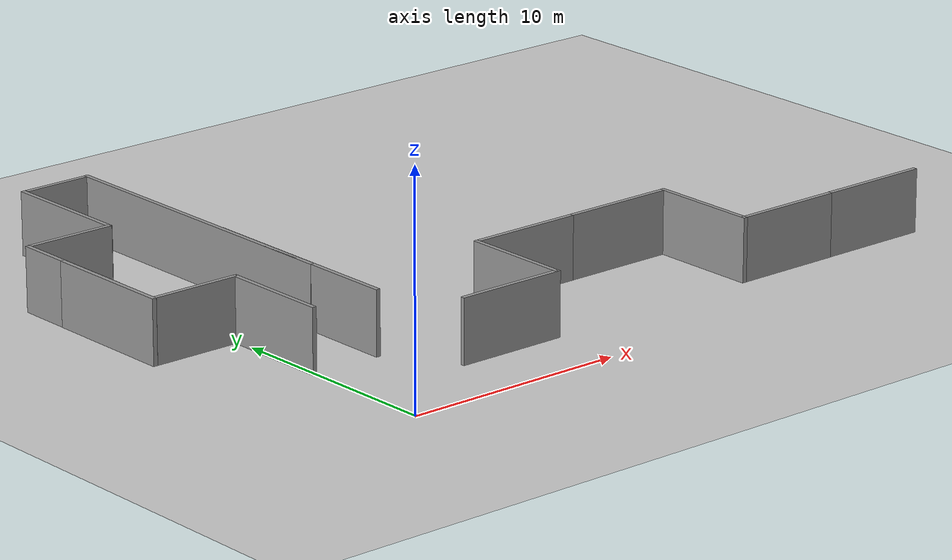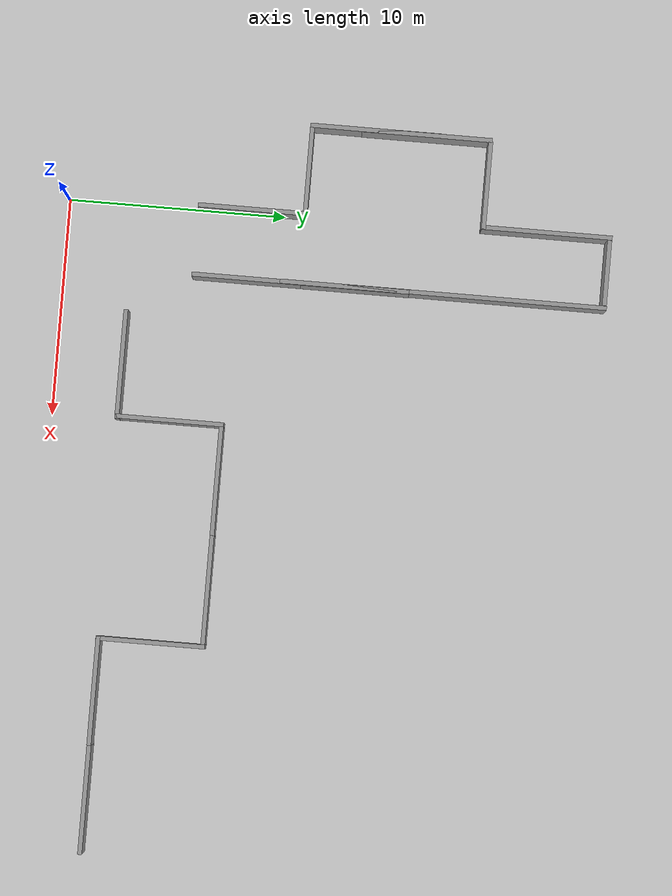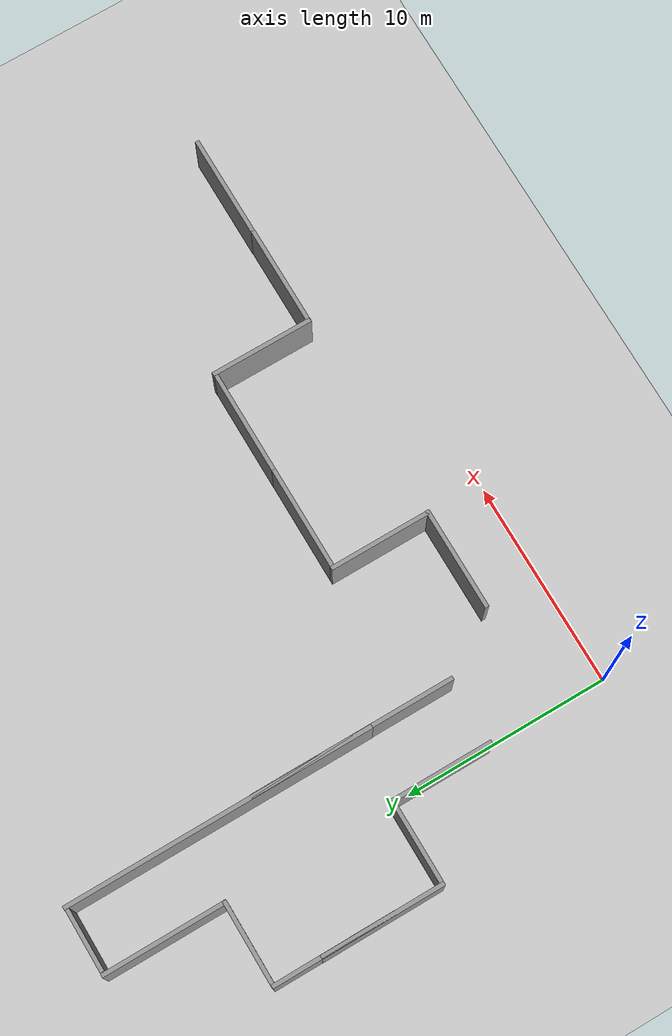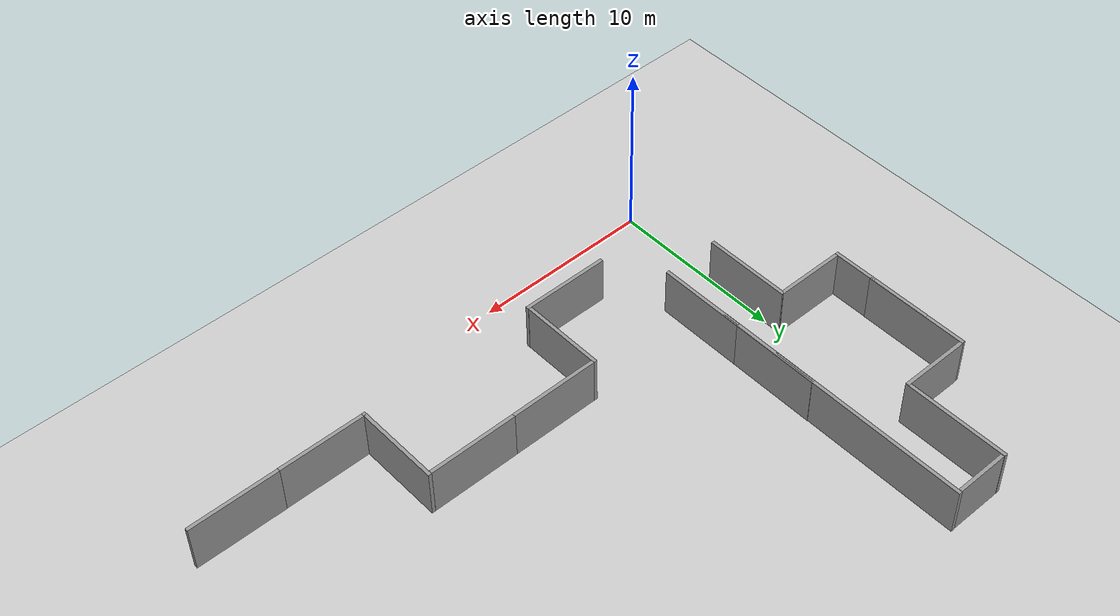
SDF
<sdf version="1.7">
 <world name="default">
  <model name="ground_plane">
   <static>1</static>
   <link name="link">
    <collision name="collision">
     <geometry><plane><normal>0 0 1</normal><size>100 100</size></plane></geometry>
     <surface>
      <contact><collide_bitmask>65535</collide_bitmask></contact>
      <friction><ode><mu>100</mu><mu2>50</mu2></ode></friction>
     </surface>
    </collision>
    <visual name="visual">
     <cast_shadows>0</cast_shadows>
     <geometry><plane><normal>0 0 1</normal><size>100 100</size></plane></geometry>
     <material>
      <script><uri>file://media/materials/scripts/gazebo.material</uri><name>Gazebo/Grey</name></script>
     </material>
    </visual>
   </link>
  </model>
  <model name="grey_wall_5_clone_clone_0_clone_1_clone_0">
   <link name="link">
    <pose>0 0 1.4 0 -0 0</pose>
    <inertial>
     <mass>1</mass>
     <inertia><ixx>1</ixx><ixy>0</ixy><ixz>0</ixz><iyy>1</iyy><iyz>0</iyz><izz>1</izz></inertia>
    </inertial>
    <visual name="visual">
     <cast_shadows>0</cast_shadows>
     <geometry><box><size>5 0.2 2.8</size></box></geometry>
     <material>
      <script>
       <uri>model://grey_wall/materials/scripts</uri>
       <uri>model://grey_wall/materials/textures</uri>
       <name>vrc/grey_wall</name>
      </script>
      <shader type="pixel"><normal_map>__default__</normal_map></shader>
      <ambient>1 1 1 1</ambient>
      <diffuse>1 1 1 1</diffuse>
      <specular>0 0 0 1</specular>
      <emissive>0 0 0 1</emissive>
     </material>
    </visual>
    <collision name="collision">
     <geometry><box><size>5 0.2 2.8</size></box></geometry>
     <surface>
      <friction>
       <ode><mu>1</mu><mu2>1</mu2><fdir1>0 0 0</fdir1><slip1>0</slip1><slip2>0</slip2></ode>
       <torsional>
        <coefficient>1</coefficient>
        <patch_radius>0</patch_radius>
        <surface_radius>0</surface_radius>
        <use_patch_radius>1</use_patch_radius>
        <ode><slip>0</slip></ode>
       </torsional>
      </friction>
      <bounce><restitution_coefficient>0</restitution_coefficient><threshold>1e+06</threshold></bounce>
      <contact>
       <collide_without_contact>0</collide_without_contact>
       <collide_without_contact_bitmask>1</collide_without_contact_bitmask>
       <collide_bitmask>1</collide_bitmask>
       <ode>
        <soft_cfm>0</soft_cfm>
        <soft_erp>0.2</soft_erp>
        <kp>1e+13</kp>
        <kd>1</kd>
        <max_vel>0.01</max_vel>
        <min_depth>0</min_depth>
       </ode>
       <bullet>
        <split_impulse>1</split_impulse>
        <split_impulse_penetration_threshold>-0.01</split_impulse_penetration_threshold>
        <soft_cfm>0</soft_cfm>
        <soft_erp>0.2</soft_erp>
        <kp>1e+13</kp>
        <kd>1</kd>
       </bullet>
      </contact>
     </surface>
    </collision>
   </link>
   <static>1</static>
   <pose>3.12019 8.47031 0 0 -0 1.57141</pose>
  </model>
  <model name="grey_wall_5_clone_clone_0_clone_1_clone_0_clone">
   <link name="link">
    <pose>0 0 1.4 0 -0 0</pose>
    <inertial>
     <mass>1</mass>
     <inertia><ixx>1</ixx><ixy>0</ixy><ixz>0</ixz><iyy>1</iyy><iyz>0</iyz><izz>1</izz></inertia>
    </inertial>
    <visual name="visual">
     <cast_shadows>0</cast_shadows>
     <geometry><box><size>5 0.2 2.8</size></box></geometry>
     <material>
      <script>
       <uri>model://grey_wall/materials/scripts</uri>
       <uri>model://grey_wall/materials/textures</uri>
       <name>vrc/grey_wall</name>
      </script>
      <shader type="pixel"><normal_map>__default__</normal_map></shader>
      <ambient>1 1 1 1</ambient>
      <diffuse>1 1 1 1</diffuse>
      <specular>0 0 0 1</specular>
      <emissive>0 0 0 1</emissive>
     </material>
    </visual>
    <collision name="collision">
     <geometry><box><size>5 0.2 2.8</size></box></geometry>
     <surface>
      <friction>
       <ode><mu>1</mu><mu2>1</mu2><fdir1>0 0 0</fdir1><slip1>0</slip1><slip2>0</slip2></ode>
       <torsional>
        <coefficient>1</coefficient>
        <patch_radius>0</patch_radius>
        <surface_radius>0</surface_radius>
        <use_patch_radius>1</use_patch_radius>
        <ode><slip>0</slip></ode>
       </torsional>
      </friction>
      <bounce><restitution_coefficient>0</restitution_coefficient><threshold>1e+06</threshold></bounce>
      <contact>
       <collide_without_contact>0</collide_without_contact>
       <collide_without_contact_bitmask>1</collide_without_contact_bitmask>
       <collide_bitmask>1</collide_bitmask>
       <ode>
        <soft_cfm>0</soft_cfm>
        <soft_erp>0.2</soft_erp>
        <kp>1e+13</kp>
        <kd>1</kd>
        <max_vel>0.01</max_vel>
        <min_depth>0</min_depth>
       </ode>
       <bullet>
        <split_impulse>1</split_impulse>
        <split_impulse_penetration_threshold>-0.01</split_impulse_penetration_threshold>
        <soft_cfm>0</soft_cfm>
        <soft_erp>0.2</soft_erp>
        <kp>1e+13</kp>
        <kd>1</kd>
       </bullet>
      </contact>
     </surface>
    </collision>
   </link>
   <static>1</static>
   <pose>-0.065222 8.48642 0 0 -0 1.57141</pose>
  </model>
  <model name="grey_wall_4_clone">
   <link name="link">
    <pose>0 0 1.4 0 -0 0</pose>
    <inertial>
     <mass>1</mass>
     <inertia><ixx>1</ixx><ixy>0</ixy><ixz>0</ixz><iyy>1</iyy><iyz>0</iyz><izz>1</izz></inertia>
    </inertial>
    <visual name="visual">
     <cast_shadows>0</cast_shadows>
     <geometry><box><size>4 0.2 2.8</size></box></geometry>
     <material>
      <script>
       <uri>model://grey_wall/materials/scripts</uri>
       <uri>model://grey_wall/materials/textures</uri>
       <name>vrc/grey_wall</name>
      </script>
      <shader type="pixel"><normal_map>__default__</normal_map></shader>
      <ambient>1 1 1 1</ambient>
      <diffuse>1 1 1 1</diffuse>
      <specular>0 0 0 1</specular>
      <emissive>0 0 0 1</emissive>
     </material>
    </visual>
    <collision name="collision">
     <geometry><box><size>4 0.2 2.8</size></box></geometry>
     <surface>
      <friction>
       <ode><mu>1</mu><mu2>1</mu2><fdir1>0 0 0</fdir1><slip1>0</slip1><slip2>0</slip2></ode>
       <torsional>
        <coefficient>1</coefficient>
        <patch_radius>0</patch_radius>
        <surface_radius>0</surface_radius>
        <use_patch_radius>1</use_patch_radius>
        <ode><slip>0</slip></ode>
       </torsional>
      </friction>
      <bounce><restitution_coefficient>0</restitution_coefficient><threshold>1e+06</threshold></bounce>
      <contact>
       <collide_without_contact>0</collide_without_contact>
       <collide_without_contact_bitmask>1</collide_without_contact_bitmask>
       <collide_bitmask>1</collide_bitmask>
       <ode>
        <soft_cfm>0</soft_cfm>
        <soft_erp>0.2</soft_erp>
        <kp>1e+13</kp>
        <kd>1</kd>
        <max_vel>0.01</max_vel>
        <min_depth>0</min_depth>
       </ode>
       <bullet>
        <split_impulse>1</split_impulse>
        <split_impulse_penetration_threshold>-0.01</split_impulse_penetration_threshold>
        <soft_cfm>0</soft_cfm>
        <soft_erp>0.2</soft_erp>
        <kp>1e+13</kp>
        <kd>1</kd>
       </bullet>
      </contact>
     </surface>
    </collision>
   </link>
   <static>1</static>
   <pose>-2.03588 10.9027 0 0 -0 0</pose>
  </model>
  <model name="grey_wall_5_clone_clone_0_clone_1_clone_0_clone_0">
   <link name="link">
    <pose>0 0 1.4 0 -0 0</pose>
    <inertial>
     <mass>1</mass>
     <inertia><ixx>1</ixx><ixy>0</ixy><ixz>0</ixz><iyy>1</iyy><iyz>0</iyz><izz>1</izz></inertia>
    </inertial>
    <visual name="visual">
     <cast_shadows>0</cast_shadows>
     <geometry><box><size>5 0.2 2.8</size></box></geometry>
     <material>
      <script>
       <uri>model://grey_wall/materials/scripts</uri>
       <uri>model://grey_wall/materials/textures</uri>
       <name>vrc/grey_wall</name>
      </script>
      <shader type="pixel"><normal_map>__default__</normal_map></shader>
      <ambient>1 1 1 1</ambient>
      <diffuse>1 1 1 1</diffuse>
      <specular>0 0 0 1</specular>
      <emissive>0 0 0 1</emissive>
     </material>
    </visual>
    <collision name="collision">
     <geometry><box><size>5 0.2 2.8</size></box></geometry>
     <surface>
      <friction>
       <ode><mu>1</mu><mu2>1</mu2><fdir1>0 0 0</fdir1><slip1>0</slip1><slip2>0</slip2></ode>
       <torsional>
        <coefficient>1</coefficient>
        <patch_radius>0</patch_radius>
        <surface_radius>0</surface_radius>
        <use_patch_radius>1</use_patch_radius>
        <ode><slip>0</slip></ode>
       </torsional>
      </friction>
      <bounce><restitution_coefficient>0</restitution_coefficient><threshold>1e+06</threshold></bounce>
      <contact>
       <collide_without_contact>0</collide_without_contact>
       <collide_without_contact_bitmask>1</collide_without_contact_bitmask>
       <collide_bitmask>1</collide_bitmask>
       <ode>
        <soft_cfm>0</soft_cfm>
        <soft_erp>0.2</soft_erp>
        <kp>1e+13</kp>
        <kd>1</kd>
        <max_vel>0.01</max_vel>
        <min_depth>0</min_depth>
       </ode>
       <bullet>
        <split_impulse>1</split_impulse>
        <split_impulse_penetration_threshold>-0.01</split_impulse_penetration_threshold>
        <soft_cfm>0</soft_cfm>
        <soft_erp>0.2</soft_erp>
        <kp>1e+13</kp>
        <kd>1</kd>
       </bullet>
      </contact>
     </surface>
    </collision>
   </link>
   <static>1</static>
   <pose>3.11862 13.4552 0 0 -0 1.57141</pose>
  </model>
  <model name="grey_wall_6_clone_clone_1">
   <link name="link">
    <pose>0 0 1.4 0 -0 0</pose>
    <inertial>
     <mass>1</mass>
     <inertia><ixx>1</ixx><ixy>0</ixy><ixz>0</ixz><iyy>1</iyy><iyz>0</iyz><izz>1</izz></inertia>
    </inertial>
    <visual name="visual">
     <cast_shadows>0</cast_shadows>
     <geometry><box><size>6 0.2 2.8</size></box></geometry>
     <material>
      <script>
       <uri>model://grey_wall/materials/scripts</uri>
       <uri>model://grey_wall/materials/textures</uri>
       <name>vrc/grey_wall</name>
      </script>
      <shader type="pixel"><normal_map>__default__</normal_map></shader>
      <ambient>1 1 1 1</ambient>
      <diffuse>1 1 1 1</diffuse>
      <specular>0 0 0 1</specular>
      <emissive>0 0 0 1</emissive>
     </material>
    </visual>
    <collision name="collision">
     <geometry><box><size>6 0.2 2.8</size></box></geometry>
     <surface>
      <friction>
       <ode><mu>1</mu><mu2>1</mu2><fdir1>0 0 0</fdir1><slip1>0</slip1><slip2>0</slip2></ode>
       <torsional>
        <coefficient>1</coefficient>
        <patch_radius>0</patch_radius>
        <surface_radius>0</surface_radius>
        <use_patch_radius>1</use_patch_radius>
        <ode><slip>0</slip></ode>
       </torsional>
      </friction>
      <bounce><restitution_coefficient>0</restitution_coefficient><threshold>1e+06</threshold></bounce>
      <contact>
       <collide_without_contact>0</collide_without_contact>
       <collide_without_contact_bitmask>1</collide_without_contact_bitmask>
       <collide_bitmask>1</collide_bitmask>
       <ode>
        <soft_cfm>0</soft_cfm>
        <soft_erp>0.2</soft_erp>
        <kp>1e+13</kp>
        <kd>1</kd>
        <max_vel>0.01</max_vel>
        <min_depth>0</min_depth>
       </ode>
       <bullet>
        <split_impulse>1</split_impulse>
        <split_impulse_penetration_threshold>-0.01</split_impulse_penetration_threshold>
        <soft_cfm>0</soft_cfm>
        <soft_erp>0.2</soft_erp>
        <kp>1e+13</kp>
        <kd>1</kd>
       </bullet>
      </contact>
     </surface>
    </collision>
   </link>
   <static>1</static>
   <pose>-0.132493 22.0077 0 0 -0 1.57141</pose>
  </model>
  <model name="grey_wall_4_clone_clone">
   <link name="link">
    <pose>0 0 1.4 0 -0 0</pose>
    <inertial>
     <mass>1</mass>
     <inertia><ixx>1</ixx><ixy>0</ixy><ixz>0</ixz><iyy>1</iyy><iyz>0</iyz><izz>1</izz></inertia>
    </inertial>
    <visual name="visual">
     <cast_shadows>0</cast_shadows>
     <geometry><box><size>4 0.2 2.8</size></box></geometry>
     <material>
      <script>
       <uri>model://grey_wall/materials/scripts</uri>
       <uri>model://grey_wall/materials/textures</uri>
       <name>vrc/grey_wall</name>
      </script>
      <shader type="pixel"><normal_map>__default__</normal_map></shader>
      <ambient>1 1 1 1</ambient>
      <diffuse>1 1 1 1</diffuse>
      <specular>0 0 0 1</specular>
      <emissive>0 0 0 1</emissive>
     </material>
    </visual>
    <collision name="collision">
     <geometry><box><size>4 0.2 2.8</size></box></geometry>
     <surface>
      <friction>
       <ode><mu>1</mu><mu2>1</mu2><fdir1>0 0 0</fdir1><slip1>0</slip1><slip2>0</slip2></ode>
       <torsional>
        <coefficient>1</coefficient>
        <patch_radius>0</patch_radius>
        <surface_radius>0</surface_radius>
        <use_patch_radius>1</use_patch_radius>
        <ode><slip>0</slip></ode>
       </torsional>
      </friction>
      <bounce><restitution_coefficient>0</restitution_coefficient><threshold>1e+06</threshold></bounce>
      <contact>
       <collide_without_contact>0</collide_without_contact>
       <collide_without_contact_bitmask>1</collide_without_contact_bitmask>
       <collide_bitmask>1</collide_bitmask>
       <ode>
        <soft_cfm>0</soft_cfm>
        <soft_erp>0.2</soft_erp>
        <kp>1e+13</kp>
        <kd>1</kd>
        <max_vel>0.01</max_vel>
        <min_depth>0</min_depth>
       </ode>
       <bullet>
        <split_impulse>1</split_impulse>
        <split_impulse_penetration_threshold>-0.01</split_impulse_penetration_threshold>
        <soft_cfm>0</soft_cfm>
        <soft_erp>0.2</soft_erp>
        <kp>1e+13</kp>
        <kd>1</kd>
       </bullet>
      </contact>
     </surface>
    </collision>
   </link>
   <static>1</static>
   <pose>-2.0563 19.0963 0 0 -0 0</pose>
  </model>
  <model name="grey_wall_15_clone_0_clone_2">
   <link name="link">
    <pose>0 0 1.4 0 -0 0</pose>
    <inertial>
     <mass>1</mass>
     <inertia><ixx>1</ixx><ixy>0</ixy><ixz>0</ixz><iyy>1</iyy><iyz>0</iyz><izz>1</izz></inertia>
    </inertial>
    <visual name="visual">
     <cast_shadows>0</cast_shadows>
     <geometry><box><size>15 0.2 2.8</size></box></geometry>
     <material>
      <script>
       <uri>model://grey_wall/materials/scripts</uri>
       <uri>model://grey_wall/materials/textures</uri>
       <name>vrc/grey_wall</name>
      </script>
      <shader type="pixel"><normal_map>__default__</normal_map></shader>
      <ambient>1 1 1 1</ambient>
      <diffuse>1 1 1 1</diffuse>
      <specular>0 0 0 1</specular>
      <emissive>0 0 0 1</emissive>
     </material>
    </visual>
    <collision name="collision">
     <geometry><box><size>15 0.2 2.8</size></box></geometry>
     <surface>
      <friction>
       <ode><mu>1</mu><mu2>1</mu2><fdir1>0 0 0</fdir1><slip1>0</slip1><slip2>0</slip2></ode>
       <torsional>
        <coefficient>1</coefficient>
        <patch_radius>0</patch_radius>
        <surface_radius>0</surface_radius>
        <use_patch_radius>1</use_patch_radius>
        <ode><slip>0</slip></ode>
       </torsional>
      </friction>
      <bounce><restitution_coefficient>0</restitution_coefficient><threshold>1e+06</threshold></bounce>
      <contact>
       <collide_without_contact>0</collide_without_contact>
       <collide_without_contact_bitmask>1</collide_without_contact_bitmask>
       <collide_bitmask>1</collide_bitmask>
       <ode>
        <soft_cfm>0</soft_cfm>
        <soft_erp>0.2</soft_erp>
        <kp>1e+13</kp>
        <kd>1</kd>
        <max_vel>0.01</max_vel>
        <min_depth>0</min_depth>
       </ode>
       <bullet>
        <split_impulse>1</split_impulse>
        <split_impulse_penetration_threshold>-0.01</split_impulse_penetration_threshold>
        <soft_cfm>0</soft_cfm>
        <soft_erp>0.2</soft_erp>
        <kp>1e+13</kp>
        <kd>1</kd>
       </bullet>
      </contact>
     </surface>
    </collision>
   </link>
   <static>1</static>
   <pose>3.09804 17.5153 0 0 -0 1.57141</pose>
  </model>
  <model name="grey_wall_6_clone_clone_clone_clone_0">
   <link name="link">
    <pose>0 0 1.4 0 -0 0</pose>
    <inertial>
     <mass>1</mass>
     <inertia><ixx>1</ixx><ixy>0</ixy><ixz>0</ixz><iyy>1</iyy><iyz>0</iyz><izz>1</izz></inertia>
    </inertial>
    <visual name="visual">
     <cast_shadows>0</cast_shadows>
     <geometry><box><size>6 0.2 2.8</size></box></geometry>
     <material>
      <script>
       <uri>model://grey_wall/materials/scripts</uri>
       <uri>model://grey_wall/materials/textures</uri>
       <name>vrc/grey_wall</name>
      </script>
      <shader type="pixel"><normal_map>__default__</normal_map></shader>
      <ambient>1 1 1 1</ambient>
      <diffuse>1 1 1 1</diffuse>
      <specular>0 0 0 1</specular>
      <emissive>0 0 0 1</emissive>
     </material>
    </visual>
    <collision name="collision">
     <geometry><box><size>6 0.2 2.8</size></box></geometry>
     <surface>
      <friction>
       <ode><mu>1</mu><mu2>1</mu2><fdir1>0 0 0</fdir1><slip1>0</slip1><slip2>0</slip2></ode>
       <torsional>
        <coefficient>1</coefficient>
        <patch_radius>0</patch_radius>
        <surface_radius>0</surface_radius>
        <use_patch_radius>1</use_patch_radius>
        <ode><slip>0</slip></ode>
       </torsional>
      </friction>
      <bounce><restitution_coefficient>0</restitution_coefficient><threshold>1e+06</threshold></bounce>
      <contact>
       <collide_without_contact>0</collide_without_contact>
       <collide_without_contact_bitmask>1</collide_without_contact_bitmask>
       <collide_bitmask>1</collide_bitmask>
       <ode>
        <soft_cfm>0</soft_cfm>
        <soft_erp>0.2</soft_erp>
        <kp>1e+13</kp>
        <kd>1</kd>
        <max_vel>0.01</max_vel>
        <min_depth>0</min_depth>
       </ode>
       <bullet>
        <split_impulse>1</split_impulse>
        <split_impulse_penetration_threshold>-0.01</split_impulse_penetration_threshold>
        <soft_cfm>0</soft_cfm>
        <soft_erp>0.2</soft_erp>
        <kp>1e+13</kp>
        <kd>1</kd>
       </bullet>
      </contact>
     </surface>
    </collision>
   </link>
   <static>1</static>
   <pose>-4.12519 16.1712 0 0 -0 1.57141</pose>
  </model>
  <model name="grey_wall_6_clone_clone_clone_clone_1">
   <link name="link">
    <pose>0 0 1.4 0 -0 0</pose>
    <inertial>
     <mass>1</mass>
     <inertia><ixx>1</ixx><ixy>0</ixy><ixz>0</ixz><iyy>1</iyy><iyz>0</iyz><izz>1</izz></inertia>
    </inertial>
    <visual name="visual">
     <cast_shadows>0</cast_shadows>
     <geometry><box><size>6 0.2 2.8</size></box></geometry>
     <material>
      <script>
       <uri>model://grey_wall/materials/scripts</uri>
       <uri>model://grey_wall/materials/textures</uri>
       <name>vrc/grey_wall</name>
      </script>
      <shader type="pixel"><normal_map>__default__</normal_map></shader>
      <ambient>1 1 1 1</ambient>
      <diffuse>1 1 1 1</diffuse>
      <specular>0 0 0 1</specular>
      <emissive>0 0 0 1</emissive>
     </material>
    </visual>
    <collision name="collision">
     <geometry><box><size>6 0.2 2.8</size></box></geometry>
     <surface>
      <friction>
       <ode><mu>1</mu><mu2>1</mu2><fdir1>0 0 0</fdir1><slip1>0</slip1><slip2>0</slip2></ode>
       <torsional>
        <coefficient>1</coefficient>
        <patch_radius>0</patch_radius>
        <surface_radius>0</surface_radius>
        <use_patch_radius>1</use_patch_radius>
        <ode><slip>0</slip></ode>
       </torsional>
      </friction>
      <bounce><restitution_coefficient>0</restitution_coefficient><threshold>1e+06</threshold></bounce>
      <contact>
       <collide_without_contact>0</collide_without_contact>
       <collide_without_contact_bitmask>1</collide_without_contact_bitmask>
       <collide_bitmask>1</collide_bitmask>
       <ode>
        <soft_cfm>0</soft_cfm>
        <soft_erp>0.2</soft_erp>
        <kp>1e+13</kp>
        <kd>1</kd>
        <max_vel>0.01</max_vel>
        <min_depth>0</min_depth>
       </ode>
       <bullet>
        <split_impulse>1</split_impulse>
        <split_impulse_penetration_threshold>-0.01</split_impulse_penetration_threshold>
        <soft_cfm>0</soft_cfm>
        <soft_erp>0.2</soft_erp>
        <kp>1e+13</kp>
        <kd>1</kd>
       </bullet>
      </contact>
     </surface>
    </collision>
   </link>
   <static>1</static>
   <pose>-4.13555 13.8061 0 0 -0 1.57141</pose>
  </model>
  <model name="grey_wall_3_clone_clone">
   <link name="link">
    <pose>0 0 1.4 0 -0 0</pose>
    <inertial>
     <mass>1</mass>
     <inertia><ixx>1</ixx><ixy>0</ixy><ixz>0</ixz><iyy>1</iyy><iyz>0</iyz><izz>1</izz></inertia>
    </inertial>
    <visual name="visual">
     <cast_shadows>0</cast_shadows>
     <geometry><box><size>3 0.2 2.8</size></box></geometry>
     <material>
      <script>
       <uri>model://grey_wall/materials/scripts</uri>
       <uri>model://grey_wall/materials/textures</uri>
       <name>vrc/grey_wall</name>
      </script>
      <shader type="pixel"><normal_map>__default__</normal_map></shader>
      <ambient>1 1 1 1</ambient>
      <diffuse>1 1 1 1</diffuse>
      <specular>0 0 0 1</specular>
      <emissive>0 0 0 1</emissive>
     </material>
    </visual>
    <collision name="collision">
     <geometry><box><size>2.96 0.2 2.8</size></box></geometry>
     <surface>
      <friction>
       <ode><mu>1</mu><mu2>1</mu2><fdir1>0 0 0</fdir1><slip1>0</slip1><slip2>0</slip2></ode>
       <torsional>
        <coefficient>1</coefficient>
        <patch_radius>0</patch_radius>
        <surface_radius>0</surface_radius>
        <use_patch_radius>1</use_patch_radius>
        <ode><slip>0</slip></ode>
       </torsional>
      </friction>
      <bounce><restitution_coefficient>0</restitution_coefficient><threshold>1e+06</threshold></bounce>
      <contact>
       <collide_without_contact>0</collide_without_contact>
       <collide_without_contact_bitmask>1</collide_without_contact_bitmask>
       <collide_bitmask>1</collide_bitmask>
       <ode>
        <soft_cfm>0</soft_cfm>
        <soft_erp>0.2</soft_erp>
        <kp>1e+13</kp>
        <kd>1</kd>
        <max_vel>0.01</max_vel>
        <min_depth>0</min_depth>
       </ode>
       <bullet>
        <split_impulse>1</split_impulse>
        <split_impulse_penetration_threshold>-0.01</split_impulse_penetration_threshold>
        <soft_cfm>0</soft_cfm>
        <soft_erp>0.2</soft_erp>
        <kp>1e+13</kp>
        <kd>1</kd>
       </bullet>
      </contact>
     </surface>
    </collision>
   </link>
   <static>1</static>
   <pose>1.48463 24.8982 0 0 -0 0</pose>
  </model>
  <model name="grey_wall_5_clone_2_clone">
   <link name="link">
    <pose>0 0 1.4 0 -0 0</pose>
    <inertial>
     <mass>1</mass>
     <inertia><ixx>1</ixx><ixy>0</ixy><ixz>0</ixz><iyy>1</iyy><iyz>0</iyz><izz>1</izz></inertia>
    </inertial>
    <visual name="visual">
     <cast_shadows>0</cast_shadows>
     <geometry><box><size>5 0.2 2.8</size></box></geometry>
     <material>
      <script>
       <uri>model://grey_wall/materials/scripts</uri>
       <uri>model://grey_wall/materials/textures</uri>
       <name>vrc/grey_wall</name>
      </script>
      <shader type="pixel"><normal_map>__default__</normal_map></shader>
      <ambient>1 1 1 1</ambient>
      <diffuse>1 1 1 1</diffuse>
      <specular>0 0 0 1</specular>
      <emissive>0 0 0 1</emissive>
     </material>
    </visual>
    <collision name="collision">
     <geometry><box><size>5 0.2 2.8</size></box></geometry>
     <surface>
      <friction>
       <ode><mu>1</mu><mu2>1</mu2><fdir1>0 0 0</fdir1><slip1>0</slip1><slip2>0</slip2></ode>
       <torsional>
        <coefficient>1</coefficient>
        <patch_radius>0</patch_radius>
        <surface_radius>0</surface_radius>
        <use_patch_radius>1</use_patch_radius>
        <ode><slip>0</slip></ode>
       </torsional>
      </friction>
      <bounce><restitution_coefficient>0</restitution_coefficient><threshold>1e+06</threshold></bounce>
      <contact>
       <collide_without_contact>0</collide_without_contact>
       <collide_without_contact_bitmask>1</collide_without_contact_bitmask>
       <collide_bitmask>1</collide_bitmask>
       <ode>
        <soft_cfm>0</soft_cfm>
        <soft_erp>0.2</soft_erp>
        <kp>1e+13</kp>
        <kd>1</kd>
        <max_vel>0.01</max_vel>
        <min_depth>0</min_depth>
       </ode>
       <bullet>
        <split_impulse>1</split_impulse>
        <split_impulse_penetration_threshold>-0.01</split_impulse_penetration_threshold>
        <soft_cfm>0</soft_cfm>
        <soft_erp>0.2</soft_erp>
        <kp>1e+13</kp>
        <kd>1</kd>
       </bullet>
      </contact>
     </surface>
    </collision>
   </link>
   <static>1</static>
   <pose>7.4961 3.10574 0 0 0 -0.000612</pose>
  </model>
  <model name="grey_wall_5_clone_clone">
   <link name="link">
    <pose>0 0 1.4 0 -0 0</pose>
    <inertial>
     <mass>1</mass>
     <inertia><ixx>1</ixx><ixy>0</ixy><ixz>0</ixz><iyy>1</iyy><iyz>0</iyz><izz>1</izz></inertia>
    </inertial>
    <visual name="visual">
     <cast_shadows>0</cast_shadows>
     <geometry><box><size>5 0.2 2.8</size></box></geometry>
     <material>
      <script>
       <uri>model://grey_wall/materials/scripts</uri>
       <uri>model://grey_wall/materials/textures</uri>
       <name>vrc/grey_wall</name>
      </script>
      <shader type="pixel"><normal_map>__default__</normal_map></shader>
      <ambient>1 1 1 1</ambient>
      <diffuse>1 1 1 1</diffuse>
      <specular>0 0 0 1</specular>
      <emissive>0 0 0 1</emissive>
     </material>
    </visual>
    <collision name="collision">
     <geometry><box><size>5 0.2 2.8</size></box></geometry>
     <surface>
      <friction>
       <ode><mu>1</mu><mu2>1</mu2><fdir1>0 0 0</fdir1><slip1>0</slip1><slip2>0</slip2></ode>
       <torsional>
        <coefficient>1</coefficient>
        <patch_radius>0</patch_radius>
        <surface_radius>0</surface_radius>
        <use_patch_radius>1</use_patch_radius>
        <ode><slip>0</slip></ode>
       </torsional>
      </friction>
      <bounce><restitution_coefficient>0</restitution_coefficient><threshold>1e+06</threshold></bounce>
      <contact>
       <collide_without_contact>0</collide_without_contact>
       <collide_without_contact_bitmask>1</collide_without_contact_bitmask>
       <collide_bitmask>1</collide_bitmask>
       <ode>
        <soft_cfm>0</soft_cfm>
        <soft_erp>0.2</soft_erp>
        <kp>1e+13</kp>
        <kd>1</kd>
        <max_vel>0.01</max_vel>
        <min_depth>0</min_depth>
       </ode>
       <bullet>
        <split_impulse>1</split_impulse>
        <split_impulse_penetration_threshold>-0.01</split_impulse_penetration_threshold>
        <soft_cfm>0</soft_cfm>
        <soft_erp>0.2</soft_erp>
        <kp>1e+13</kp>
        <kd>1</kd>
       </bullet>
      </contact>
     </surface>
    </collision>
   </link>
   <static>1</static>
   <pose>9.88537 5.50816 0 0 -0 1.57141</pose>
  </model>
  <model name="grey_wall_5_clone_clone_clone">
   <link name="link">
    <pose>0 0 1.4 0 -0 0</pose>
    <inertial>
     <mass>1</mass>
     <inertia><ixx>1</ixx><ixy>0</ixy><ixz>0</ixz><iyy>1</iyy><iyz>0</iyz><izz>1</izz></inertia>
    </inertial>
    <visual name="visual">
     <cast_shadows>0</cast_shadows>
     <geometry><box><size>5 0.2 2.8</size></box></geometry>
     <material>
      <script>
       <uri>model://grey_wall/materials/scripts</uri>
       <uri>model://grey_wall/materials/textures</uri>
       <name>vrc/grey_wall</name>
      </script>
      <shader type="pixel"><normal_map>__default__</normal_map></shader>
      <ambient>1 1 1 1</ambient>
      <diffuse>1 1 1 1</diffuse>
      <specular>0 0 0 1</specular>
      <emissive>0 0 0 1</emissive>
     </material>
    </visual>
    <collision name="collision">
     <geometry><box><size>5 0.2 2.8</size></box></geometry>
     <surface>
      <friction>
       <ode><mu>1</mu><mu2>1</mu2><fdir1>0 0 0</fdir1><slip1>0</slip1><slip2>0</slip2></ode>
       <torsional>
        <coefficient>1</coefficient>
        <patch_radius>0</patch_radius>
        <surface_radius>0</surface_radius>
        <use_patch_radius>1</use_patch_radius>
        <ode><slip>0</slip></ode>
       </torsional>
      </friction>
      <bounce><restitution_coefficient>0</restitution_coefficient><threshold>1e+06</threshold></bounce>
      <contact>
       <collide_without_contact>0</collide_without_contact>
       <collide_without_contact_bitmask>1</collide_without_contact_bitmask>
       <collide_bitmask>1</collide_bitmask>
       <ode>
        <soft_cfm>0</soft_cfm>
        <soft_erp>0.2</soft_erp>
        <kp>1e+13</kp>
        <kd>1</kd>
        <max_vel>0.01</max_vel>
        <min_depth>0</min_depth>
       </ode>
       <bullet>
        <split_impulse>1</split_impulse>
        <split_impulse_penetration_threshold>-0.01</split_impulse_penetration_threshold>
        <soft_cfm>0</soft_cfm>
        <soft_erp>0.2</soft_erp>
        <kp>1e+13</kp>
        <kd>1</kd>
       </bullet>
      </contact>
     </surface>
    </collision>
   </link>
   <static>1</static>
   <pose>20.0784 5.50985 0 0 -0 1.57141</pose>
  </model>
  <model name="grey_wall_5_clone_2_clone_clone">
   <link name="link">
    <pose>0 0 1.4 0 -0 0</pose>
    <inertial>
     <mass>1</mass>
     <inertia><ixx>1</ixx><ixy>0</ixy><ixz>0</ixz><iyy>1</iyy><iyz>0</iyz><izz>1</izz></inertia>
    </inertial>
    <visual name="visual">
     <cast_shadows>0</cast_shadows>
     <geometry><box><size>5 0.2 2.8</size></box></geometry>
     <material>
      <script>
       <uri>model://grey_wall/materials/scripts</uri>
       <uri>model://grey_wall/materials/textures</uri>
       <name>vrc/grey_wall</name>
      </script>
      <shader type="pixel"><normal_map>__default__</normal_map></shader>
      <ambient>1 1 1 1</ambient>
      <diffuse>1 1 1 1</diffuse>
      <specular>0 0 0 1</specular>
      <emissive>0 0 0 1</emissive>
     </material>
    </visual>
    <collision name="collision">
     <geometry><box><size>5 0.2 2.8</size></box></geometry>
     <surface>
      <friction>
       <ode><mu>1</mu><mu2>1</mu2><fdir1>0 0 0</fdir1><slip1>0</slip1><slip2>0</slip2></ode>
       <torsional>
        <coefficient>1</coefficient>
        <patch_radius>0</patch_radius>
        <surface_radius>0</surface_radius>
        <use_patch_radius>1</use_patch_radius>
        <ode><slip>0</slip></ode>
       </torsional>
      </friction>
      <bounce><restitution_coefficient>0</restitution_coefficient><threshold>1e+06</threshold></bounce>
      <contact>
       <collide_without_contact>0</collide_without_contact>
       <collide_without_contact_bitmask>1</collide_without_contact_bitmask>
       <collide_bitmask>1</collide_bitmask>
       <ode>
        <soft_cfm>0</soft_cfm>
        <soft_erp>0.2</soft_erp>
        <kp>1e+13</kp>
        <kd>1</kd>
        <max_vel>0.01</max_vel>
        <min_depth>0</min_depth>
       </ode>
       <bullet>
        <split_impulse>1</split_impulse>
        <split_impulse_penetration_threshold>-0.01</split_impulse_penetration_threshold>
        <soft_cfm>0</soft_cfm>
        <soft_erp>0.2</soft_erp>
        <kp>1e+13</kp>
        <kd>1</kd>
       </bullet>
      </contact>
     </surface>
    </collision>
   </link>
   <static>1</static>
   <pose>12.4725 7.9049 0 0 0 -0.000612</pose>
  </model>
  <model name="grey_wall_5_clone_2_clone_clone_clone">
   <link name="link">
    <pose>0 0 1.4 0 -0 0</pose>
    <inertial>
     <mass>1</mass>
     <inertia><ixx>1</ixx><ixy>0</ixy><ixz>0</ixz><iyy>1</iyy><iyz>0</iyz><izz>1</izz></inertia>
    </inertial>
    <visual name="visual">
     <cast_shadows>0</cast_shadows>
     <geometry><box><size>5 0.2 2.8</size></box></geometry>
     <material>
      <script>
       <uri>model://grey_wall/materials/scripts</uri>
       <uri>model://grey_wall/materials/textures</uri>
       <name>vrc/grey_wall</name>
      </script>
      <shader type="pixel"><normal_map>__default__</normal_map></shader>
      <ambient>1 1 1 1</ambient>
      <diffuse>1 1 1 1</diffuse>
      <specular>0 0 0 1</specular>
      <emissive>0 0 0 1</emissive>
     </material>
    </visual>
    <collision name="collision">
     <geometry><box><size>5 0.2 2.8</size></box></geometry>
     <surface>
      <friction>
       <ode><mu>1</mu><mu2>1</mu2><fdir1>0 0 0</fdir1><slip1>0</slip1><slip2>0</slip2></ode>
       <torsional>
        <coefficient>1</coefficient>
        <patch_radius>0</patch_radius>
        <surface_radius>0</surface_radius>
        <use_patch_radius>1</use_patch_radius>
        <ode><slip>0</slip></ode>
       </torsional>
      </friction>
      <bounce><restitution_coefficient>0</restitution_coefficient><threshold>1e+06</threshold></bounce>
      <contact>
       <collide_without_contact>0</collide_without_contact>
       <collide_without_contact_bitmask>1</collide_without_contact_bitmask>
       <collide_bitmask>1</collide_bitmask>
       <ode>
        <soft_cfm>0</soft_cfm>
        <soft_erp>0.2</soft_erp>
        <kp>1e+13</kp>
        <kd>1</kd>
        <max_vel>0.01</max_vel>
        <min_depth>0</min_depth>
       </ode>
       <bullet>
        <split_impulse>1</split_impulse>
        <split_impulse_penetration_threshold>-0.01</split_impulse_penetration_threshold>
        <soft_cfm>0</soft_cfm>
        <soft_erp>0.2</soft_erp>
        <kp>1e+13</kp>
        <kd>1</kd>
       </bullet>
      </contact>
     </surface>
    </collision>
   </link>
   <static>1</static>
   <pose>17.4726 7.90564 0 0 0 -0.000612</pose>
  </model>
  <model name="grey_wall_5_clone_2_clone_clone_clone_0">
   <link name="link">
    <pose>0 0 1.4 0 -0 0</pose>
    <inertial>
     <mass>1</mass>
     <inertia><ixx>1</ixx><ixy>0</ixy><ixz>0</ixz><iyy>1</iyy><iyz>0</iyz><izz>1</izz></inertia>
    </inertial>
    <visual name="visual">
     <cast_shadows>0</cast_shadows>
     <geometry><box><size>5 0.2 2.8</size></box></geometry>
     <material>
      <script>
       <uri>model://grey_wall/materials/scripts</uri>
       <uri>model://grey_wall/materials/textures</uri>
       <name>vrc/grey_wall</name>
      </script>
      <shader type="pixel"><normal_map>__default__</normal_map></shader>
      <ambient>1 1 1 1</ambient>
      <diffuse>1 1 1 1</diffuse>
      <specular>0 0 0 1</specular>
      <emissive>0 0 0 1</emissive>
     </material>
    </visual>
    <collision name="collision">
     <geometry><box><size>5 0.2 2.8</size></box></geometry>
     <surface>
      <friction>
       <ode><mu>1</mu><mu2>1</mu2><fdir1>0 0 0</fdir1><slip1>0</slip1><slip2>0</slip2></ode>
       <torsional>
        <coefficient>1</coefficient>
        <patch_radius>0</patch_radius>
        <surface_radius>0</surface_radius>
        <use_patch_radius>1</use_patch_radius>
        <ode><slip>0</slip></ode>
       </torsional>
      </friction>
      <bounce><restitution_coefficient>0</restitution_coefficient><threshold>1e+06</threshold></bounce>
      <contact>
       <collide_without_contact>0</collide_without_contact>
       <collide_without_contact_bitmask>1</collide_without_contact_bitmask>
       <collide_bitmask>1</collide_bitmask>
       <ode>
        <soft_cfm>0</soft_cfm>
        <soft_erp>0.2</soft_erp>
        <kp>1e+13</kp>
        <kd>1</kd>
        <max_vel>0.01</max_vel>
        <min_depth>0</min_depth>
       </ode>
       <bullet>
        <split_impulse>1</split_impulse>
        <split_impulse_penetration_threshold>-0.01</split_impulse_penetration_threshold>
        <soft_cfm>0</soft_cfm>
        <soft_erp>0.2</soft_erp>
        <kp>1e+13</kp>
        <kd>1</kd>
       </bullet>
      </contact>
     </surface>
    </collision>
   </link>
   <static>1</static>
   <pose>22.4913 3.1126 0 0 0 -0.000612</pose>
  </model>
  <model name="grey_wall_5_clone_2_clone_clone_clone_clone">
   <link name="link">
    <pose>0 0 1.4 0 -0 0</pose>
    <inertial>
     <mass>1</mass>
     <inertia><ixx>1</ixx><ixy>0</ixy><ixz>0</ixz><iyy>1</iyy><iyz>0</iyz><izz>1</izz></inertia>
    </inertial>
    <visual name="visual">
     <cast_shadows>0</cast_shadows>
     <geometry><box><size>5 0.2 2.8</size></box></geometry>
     <material>
      <script>
       <uri>model://grey_wall/materials/scripts</uri>
       <uri>model://grey_wall/materials/textures</uri>
       <name>vrc/grey_wall</name>
      </script>
      <shader type="pixel"><normal_map>__default__</normal_map></shader>
      <ambient>1 1 1 1</ambient>
      <diffuse>1 1 1 1</diffuse>
      <specular>0 0 0 1</specular>
      <emissive>0 0 0 1</emissive>
     </material>
    </visual>
    <collision name="collision">
     <geometry><box><size>5 0.2 2.8</size></box></geometry>
     <surface>
      <friction>
       <ode><mu>1</mu><mu2>1</mu2><fdir1>0 0 0</fdir1><slip1>0</slip1><slip2>0</slip2></ode>
       <torsional>
        <coefficient>1</coefficient>
        <patch_radius>0</patch_radius>
        <surface_radius>0</surface_radius>
        <use_patch_radius>1</use_patch_radius>
        <ode><slip>0</slip></ode>
       </torsional>
      </friction>
      <bounce><restitution_coefficient>0</restitution_coefficient><threshold>1e+06</threshold></bounce>
      <contact>
       <collide_without_contact>0</collide_without_contact>
       <collide_without_contact_bitmask>1</collide_without_contact_bitmask>
       <collide_bitmask>1</collide_bitmask>
       <ode>
        <soft_cfm>0</soft_cfm>
        <soft_erp>0.2</soft_erp>
        <kp>1e+13</kp>
        <kd>1</kd>
        <max_vel>0.01</max_vel>
        <min_depth>0</min_depth>
       </ode>
       <bullet>
        <split_impulse>1</split_impulse>
        <split_impulse_penetration_threshold>-0.01</split_impulse_penetration_threshold>
        <soft_cfm>0</soft_cfm>
        <soft_erp>0.2</soft_erp>
        <kp>1e+13</kp>
        <kd>1</kd>
       </bullet>
      </contact>
     </surface>
    </collision>
   </link>
   <static>1</static>
   <pose>27.4883 3.11943 0 0 0 -0.000612</pose>
  </model>
 </world>
</sdf>
